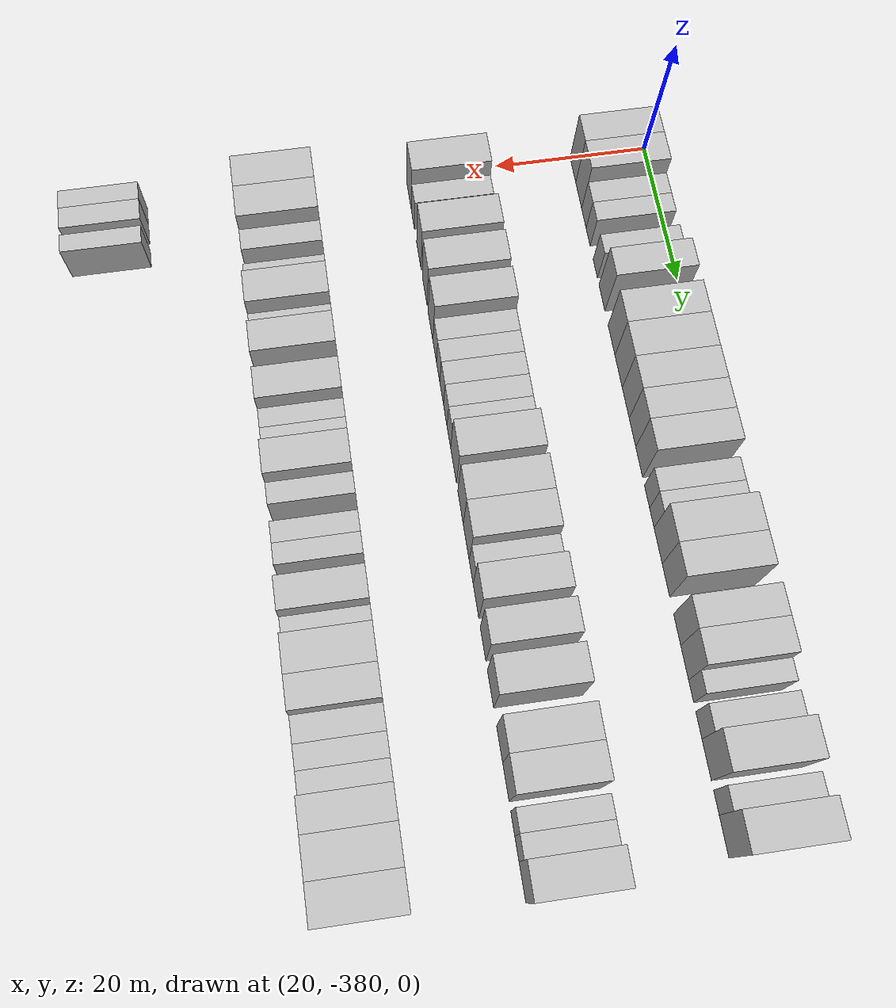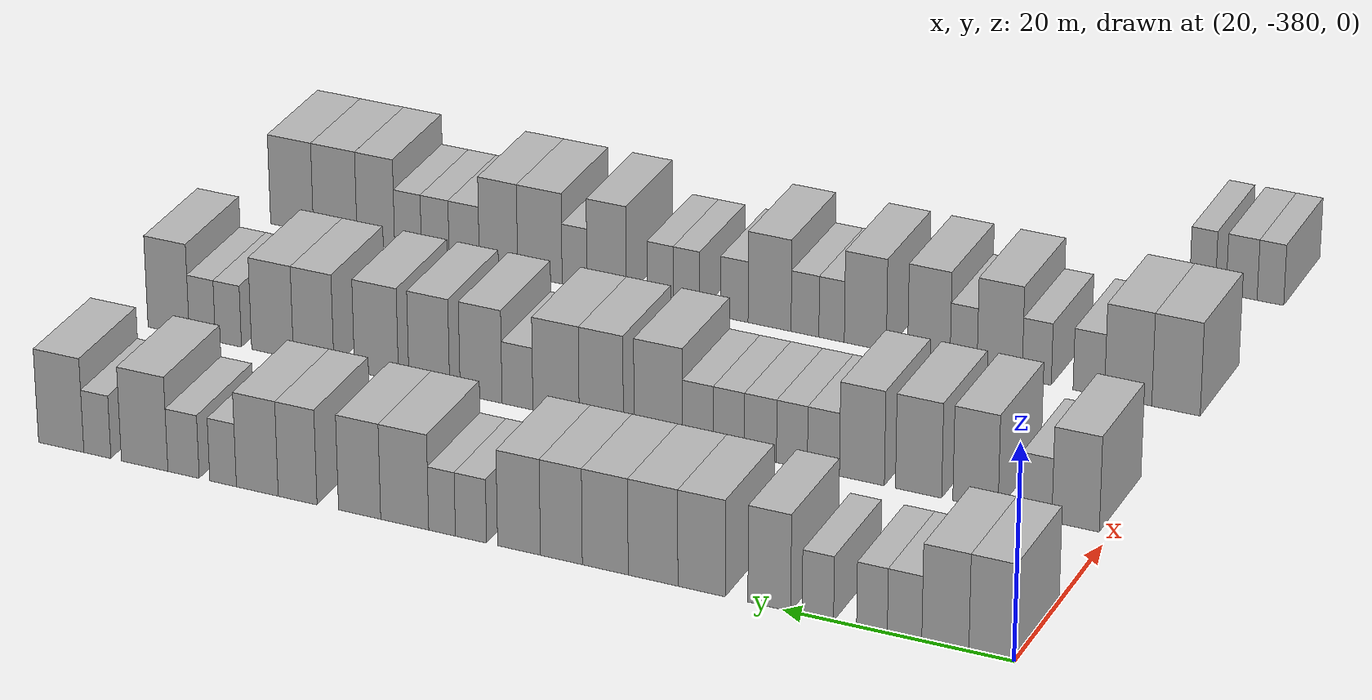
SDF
<sdf version="1.6">
 <world name="default">
  <model name="building_1">
   <static>1</static>
   <pose>25.0000 -378.0509 0 0.000000 0.000000 0.000000</pose>
   <link name="link">
    <pose>0 0 4.50 0 0 0</pose>
    <collision name="collision"><geometry><box><size>10.0000 3.8982 9.0000</size></box></geometry></collision>
    <visual name="visual">
     <cast_shadows>0</cast_shadows>
     <geometry><box><size>10.0000 3.8982 9.0000</size></box></geometry>
     <material>
      <script>
       <uri>model://HANNAS_wall/materials/scripts</uri>
       <uri>model://HANNAS_wall/materials/textures</uri>
       <name>vrc/HANNAS_wall</name>
      </script>
     </material>
    </visual>
   </link>
  </model>
  <model name="building_2">
   <static>1</static>
   <pose>25.0000 -374.0797 0 0.000000 0.000000 0.000000</pose>
   <link name="link">
    <pose>0 0 4.50 0 0 0</pose>
    <collision name="collision"><geometry><box><size>10.0000 4.0440 9.0000</size></box></geometry></collision>
    <visual name="visual">
     <cast_shadows>0</cast_shadows>
     <geometry><box><size>10.0000 4.0440 9.0000</size></box></geometry>
     <material>
      <script>
       <uri>model://HANNAS_wall/materials/scripts</uri>
       <uri>model://HANNAS_wall/materials/textures</uri>
       <name>vrc/HANNAS_wall</name>
      </script>
     </material>
    </visual>
   </link>
  </model>
  <model name="building_3">
   <static>1</static>
   <pose>25.0000 -370.5711 0 0.000000 0.000000 0.000000</pose>
   <link name="link">
    <pose>0 0 3.00 0 0 0</pose>
    <collision name="collision"><geometry><box><size>10.0000 2.9733 6.0000</size></box></geometry></collision>
    <visual name="visual">
     <cast_shadows>0</cast_shadows>
     <geometry><box><size>10.0000 2.9733 6.0000</size></box></geometry>
     <material>
      <script>
       <uri>model://HANNAS_wall/materials/scripts</uri>
       <uri>model://HANNAS_wall/materials/textures</uri>
       <name>vrc/HANNAS_wall</name>
      </script>
     </material>
    </visual>
   </link>
  </model>
  <model name="building_4">
   <static>1</static>
   <pose>25.0000 -367.7521 0 0.000000 0.000000 0.000000</pose>
   <link name="link">
    <pose>0 0 3.00 0 0 0</pose>
    <collision name="collision"><geometry><box><size>10.0000 2.6647 6.0000</size></box></geometry></collision>
    <visual name="visual">
     <cast_shadows>0</cast_shadows>
     <geometry><box><size>10.0000 2.6647 6.0000</size></box></geometry>
     <material>
      <script>
       <uri>model://HANNAS_wall/materials/scripts</uri>
       <uri>model://HANNAS_wall/materials/textures</uri>
       <name>vrc/HANNAS_wall</name>
      </script>
     </material>
    </visual>
   </link>
  </model>
  <model name="building_5">
   <static>1</static>
   <pose>25.0000 -363.0507 0 0.000000 0.000000 0.000000</pose>
   <link name="link">
    <pose>0 0 3.00 0 0 0</pose>
    <collision name="collision"><geometry><box><size>10.0000 2.7381 6.0000</size></box></geometry></collision>
    <visual name="visual">
     <cast_shadows>0</cast_shadows>
     <geometry><box><size>10.0000 2.7381 6.0000</size></box></geometry>
     <material>
      <script>
       <uri>model://HANNAS_wall/materials/scripts</uri>
       <uri>model://HANNAS_wall/materials/textures</uri>
       <name>vrc/HANNAS_wall</name>
      </script>
     </material>
    </visual>
   </link>
  </model>
  <model name="building_6">
   <static>1</static>
   <pose>25.0000 -358.7996 0 0.000000 0.000000 0.000000</pose>
   <link name="link">
    <pose>0 0 4.50 0 0 0</pose>
    <collision name="collision"><geometry><box><size>10.0000 3.7640 9.0000</size></box></geometry></collision>
    <visual name="visual">
     <cast_shadows>0</cast_shadows>
     <geometry><box><size>10.0000 3.7640 9.0000</size></box></geometry>
     <material>
      <script>
       <uri>model://HANNAS_wall/materials/scripts</uri>
       <uri>model://HANNAS_wall/materials/textures</uri>
       <name>vrc/HANNAS_wall</name>
      </script>
     </material>
    </visual>
   </link>
  </model>
  <model name="building_7">
   <static>1</static>
   <pose>25.0000 -352.8179 0 0.000000 0.000000 0.000000</pose>
   <link name="link">
    <pose>0 0 4.50 0 0 0</pose>
    <collision name="collision"><geometry><box><size>10.0000 4.1994 9.0000</size></box></geometry></collision>
    <visual name="visual">
     <cast_shadows>0</cast_shadows>
     <geometry><box><size>10.0000 4.1994 9.0000</size></box></geometry>
     <material>
      <script>
       <uri>model://HANNAS_wall/materials/scripts</uri>
       <uri>model://HANNAS_wall/materials/textures</uri>
       <name>vrc/HANNAS_wall</name>
      </script>
     </material>
    </visual>
   </link>
  </model>
  <model name="building_8">
   <static>1</static>
   <pose>25.0000 -348.5039 0 0.000000 0.000000 0.000000</pose>
   <link name="link">
    <pose>0 0 4.50 0 0 0</pose>
    <collision name="collision"><geometry><box><size>10.0000 4.4284 9.0000</size></box></geometry></collision>
    <visual name="visual">
     <cast_shadows>0</cast_shadows>
     <geometry><box><size>10.0000 4.4284 9.0000</size></box></geometry>
     <material>
      <script>
       <uri>model://HANNAS_wall/materials/scripts</uri>
       <uri>model://HANNAS_wall/materials/textures</uri>
       <name>vrc/HANNAS_wall</name>
      </script>
     </material>
    </visual>
   </link>
  </model>
  <model name="building_9">
   <static>1</static>
   <pose>25.0000 -344.2321 0 0.000000 0.000000 0.000000</pose>
   <link name="link">
    <pose>0 0 4.50 0 0 0</pose>
    <collision name="collision"><geometry><box><size>10.0000 4.1153 9.0000</size></box></geometry></collision>
    <visual name="visual">
     <cast_shadows>0</cast_shadows>
     <geometry><box><size>10.0000 4.1153 9.0000</size></box></geometry>
     <material>
      <script>
       <uri>model://HANNAS_wall/materials/scripts</uri>
       <uri>model://HANNAS_wall/materials/textures</uri>
       <name>vrc/HANNAS_wall</name>
      </script>
     </material>
    </visual>
   </link>
  </model>
  <model name="building_10">
   <static>1</static>
   <pose>25.0000 -340.2857 0 0.000000 0.000000 0.000000</pose>
   <link name="link">
    <pose>0 0 4.50 0 0 0</pose>
    <collision name="collision"><geometry><box><size>10.0000 3.7775 9.0000</size></box></geometry></collision>
    <visual name="visual">
     <cast_shadows>0</cast_shadows>
     <geometry><box><size>10.0000 3.7775 9.0000</size></box></geometry>
     <material>
      <script>
       <uri>model://HANNAS_wall/materials/scripts</uri>
       <uri>model://HANNAS_wall/materials/textures</uri>
       <name>vrc/HANNAS_wall</name>
      </script>
     </material>
    </visual>
   </link>
  </model>
  <model name="building_11">
   <static>1</static>
   <pose>25.0000 -336.4537 0 0.000000 0.000000 0.000000</pose>
   <link name="link">
    <pose>0 0 4.50 0 0 0</pose>
    <collision name="collision"><geometry><box><size>10.0000 3.8866 9.0000</size></box></geometry></collision>
    <visual name="visual">
     <cast_shadows>0</cast_shadows>
     <geometry><box><size>10.0000 3.8866 9.0000</size></box></geometry>
     <material>
      <script>
       <uri>model://HANNAS_wall/materials/scripts</uri>
       <uri>model://HANNAS_wall/materials/textures</uri>
       <name>vrc/HANNAS_wall</name>
      </script>
     </material>
    </visual>
   </link>
  </model>
  <model name="building_12">
   <static>1</static>
   <pose>25.0000 -332.0855 0 0.000000 0.000000 0.000000</pose>
   <link name="link">
    <pose>0 0 3.00 0 0 0</pose>
    <collision name="collision"><geometry><box><size>10.0000 2.8497 6.0000</size></box></geometry></collision>
    <visual name="visual">
     <cast_shadows>0</cast_shadows>
     <geometry><box><size>10.0000 2.8497 6.0000</size></box></geometry>
     <material>
      <script>
       <uri>model://HANNAS_wall/materials/scripts</uri>
       <uri>model://HANNAS_wall/materials/textures</uri>
       <name>vrc/HANNAS_wall</name>
      </script>
     </material>
    </visual>
   </link>
  </model>
  <model name="building_13">
   <static>1</static>
   <pose>25.0000 -329.4376 0 0.000000 0.000000 0.000000</pose>
   <link name="link">
    <pose>0 0 3.00 0 0 0</pose>
    <collision name="collision"><geometry><box><size>10.0000 2.4461 6.0000</size></box></geometry></collision>
    <visual name="visual">
     <cast_shadows>0</cast_shadows>
     <geometry><box><size>10.0000 2.4461 6.0000</size></box></geometry>
     <material>
      <script>
       <uri>model://HANNAS_wall/materials/scripts</uri>
       <uri>model://HANNAS_wall/materials/textures</uri>
       <name>vrc/HANNAS_wall</name>
      </script>
     </material>
    </visual>
   </link>
  </model>
  <model name="building_14">
   <static>1</static>
   <pose>25.0000 -326.0025 0 0.000000 0.000000 0.000000</pose>
   <link name="link">
    <pose>0 0 4.50 0 0 0</pose>
    <collision name="collision"><geometry><box><size>10.0000 4.4242 9.0000</size></box></geometry></collision>
    <visual name="visual">
     <cast_shadows>0</cast_shadows>
     <geometry><box><size>10.0000 4.4242 9.0000</size></box></geometry>
     <material>
      <script>
       <uri>model://HANNAS_wall/materials/scripts</uri>
       <uri>model://HANNAS_wall/materials/textures</uri>
       <name>vrc/HANNAS_wall</name>
      </script>
     </material>
    </visual>
   </link>
  </model>
  <model name="building_15">
   <static>1</static>
   <pose>25.0000 -321.8357 0 0.000000 0.000000 0.000000</pose>
   <link name="link">
    <pose>0 0 4.50 0 0 0</pose>
    <collision name="collision"><geometry><box><size>10.0000 3.9092 9.0000</size></box></geometry></collision>
    <visual name="visual">
     <cast_shadows>0</cast_shadows>
     <geometry><box><size>10.0000 3.9092 9.0000</size></box></geometry>
     <material>
      <script>
       <uri>model://HANNAS_wall/materials/scripts</uri>
       <uri>model://HANNAS_wall/materials/textures</uri>
       <name>vrc/HANNAS_wall</name>
      </script>
     </material>
    </visual>
   </link>
  </model>
  <model name="building_16">
   <static>1</static>
   <pose>25.0000 -316.0678 0 0.000000 0.000000 0.000000</pose>
   <link name="link">
    <pose>0 0 4.50 0 0 0</pose>
    <collision name="collision"><geometry><box><size>10.0000 3.6266 9.0000</size></box></geometry></collision>
    <visual name="visual">
     <cast_shadows>0</cast_shadows>
     <geometry><box><size>10.0000 3.6266 9.0000</size></box></geometry>
     <material>
      <script>
       <uri>model://HANNAS_wall/materials/scripts</uri>
       <uri>model://HANNAS_wall/materials/textures</uri>
       <name>vrc/HANNAS_wall</name>
      </script>
     </material>
    </visual>
   </link>
  </model>
  <model name="building_17">
   <static>1</static>
   <pose>25.0000 -312.2906 0 0.000000 0.000000 0.000000</pose>
   <link name="link">
    <pose>0 0 4.50 0 0 0</pose>
    <collision name="collision"><geometry><box><size>10.0000 3.9279 9.0000</size></box></geometry></collision>
    <visual name="visual">
     <cast_shadows>0</cast_shadows>
     <geometry><box><size>10.0000 3.9279 9.0000</size></box></geometry>
     <material>
      <script>
       <uri>model://HANNAS_wall/materials/scripts</uri>
       <uri>model://HANNAS_wall/materials/textures</uri>
       <name>vrc/HANNAS_wall</name>
      </script>
     </material>
    </visual>
   </link>
  </model>
  <model name="building_18">
   <static>1</static>
   <pose>25.0000 -309.0720 0 0.000000 0.000000 0.000000</pose>
   <link name="link">
    <pose>0 0 3.00 0 0 0</pose>
    <collision name="collision"><geometry><box><size>10.0000 2.5093 6.0000</size></box></geometry></collision>
    <visual name="visual">
     <cast_shadows>0</cast_shadows>
     <geometry><box><size>10.0000 2.5093 6.0000</size></box></geometry>
     <material>
      <script>
       <uri>model://HANNAS_wall/materials/scripts</uri>
       <uri>model://HANNAS_wall/materials/textures</uri>
       <name>vrc/HANNAS_wall</name>
      </script>
     </material>
    </visual>
   </link>
  </model>
  <model name="building_19">
   <static>1</static>
   <pose>25.0000 -305.3311 0 0.000000 0.000000 0.000000</pose>
   <link name="link">
    <pose>0 0 3.00 0 0 0</pose>
    <collision name="collision"><geometry><box><size>10.0000 2.9726 6.0000</size></box></geometry></collision>
    <visual name="visual">
     <cast_shadows>0</cast_shadows>
     <geometry><box><size>10.0000 2.9726 6.0000</size></box></geometry>
     <material>
      <script>
       <uri>model://HANNAS_wall/materials/scripts</uri>
       <uri>model://HANNAS_wall/materials/textures</uri>
       <name>vrc/HANNAS_wall</name>
      </script>
     </material>
    </visual>
   </link>
  </model>
  <model name="building_20">
   <static>1</static>
   <pose>25.0000 -301.6271 0 0.000000 0.000000 0.000000</pose>
   <link name="link">
    <pose>0 0 4.50 0 0 0</pose>
    <collision name="collision"><geometry><box><size>10.0000 4.4356 9.0000</size></box></geometry></collision>
    <visual name="visual">
     <cast_shadows>0</cast_shadows>
     <geometry><box><size>10.0000 4.4356 9.0000</size></box></geometry>
     <material>
      <script>
       <uri>model://HANNAS_wall/materials/scripts</uri>
       <uri>model://HANNAS_wall/materials/textures</uri>
       <name>vrc/HANNAS_wall</name>
      </script>
     </material>
    </visual>
   </link>
  </model>
  <model name="building_21">
   <static>1</static>
   <pose>25.0000 -297.1116 0 0.000000 0.000000 0.000000</pose>
   <link name="link">
    <pose>0 0 3.00 0 0 0</pose>
    <collision name="collision"><geometry><box><size>10.0000 2.5954 6.0000</size></box></geometry></collision>
    <visual name="visual">
     <cast_shadows>0</cast_shadows>
     <geometry><box><size>10.0000 2.5954 6.0000</size></box></geometry>
     <material>
      <script>
       <uri>model://HANNAS_wall/materials/scripts</uri>
       <uri>model://HANNAS_wall/materials/textures</uri>
       <name>vrc/HANNAS_wall</name>
      </script>
     </material>
    </visual>
   </link>
  </model>
  <model name="building_22">
   <static>1</static>
   <pose>25.0000 -293.6327 0 0.000000 0.000000 0.000000</pose>
   <link name="link">
    <pose>0 0 4.50 0 0 0</pose>
    <collision name="collision"><geometry><box><size>10.0000 4.3623 9.0000</size></box></geometry></collision>
    <visual name="visual">
     <cast_shadows>0</cast_shadows>
     <geometry><box><size>10.0000 4.3623 9.0000</size></box></geometry>
     <material>
      <script>
       <uri>model://HANNAS_wall/materials/scripts</uri>
       <uri>model://HANNAS_wall/materials/textures</uri>
       <name>vrc/HANNAS_wall</name>
      </script>
     </material>
    </visual>
   </link>
  </model>
  <model name="building_185">
   <static>1</static>
   <pose>47.0000 -376.9051 0 0.000000 0.000000 0.000000</pose>
   <link name="link">
    <pose>0 0 4.50 0 0 0</pose>
    <collision name="collision"><geometry><box><size>10.0000 4.1899 9.0000</size></box></geometry></collision>
    <visual name="visual">
     <cast_shadows>0</cast_shadows>
     <geometry><box><size>10.0000 4.1899 9.0000</size></box></geometry>
     <material>
      <script>
       <uri>model://HANNAS_wall/materials/scripts</uri>
       <uri>model://HANNAS_wall/materials/textures</uri>
       <name>vrc/HANNAS_wall</name>
      </script>
     </material>
    </visual>
   </link>
  </model>
  <model name="building_186">
   <static>1</static>
   <pose>47.0000 -373.4280 0 0.000000 0.000000 0.000000</pose>
   <link name="link">
    <pose>0 0 3.00 0 0 0</pose>
    <collision name="collision"><geometry><box><size>10.0000 2.7643 6.0000</size></box></geometry></collision>
    <visual name="visual">
     <cast_shadows>0</cast_shadows>
     <geometry><box><size>10.0000 2.7643 6.0000</size></box></geometry>
     <material>
      <script>
       <uri>model://HANNAS_wall/materials/scripts</uri>
       <uri>model://HANNAS_wall/materials/textures</uri>
       <name>vrc/HANNAS_wall</name>
      </script>
     </material>
    </visual>
   </link>
  </model>
  <model name="building_187">
   <static>1</static>
   <pose>47.0000 -368.0248 0 0.000000 0.000000 0.000000</pose>
   <link name="link">
    <pose>0 0 4.50 0 0 0</pose>
    <collision name="collision"><geometry><box><size>10.0000 4.0422 9.0000</size></box></geometry></collision>
    <visual name="visual">
     <cast_shadows>0</cast_shadows>
     <geometry><box><size>10.0000 4.0422 9.0000</size></box></geometry>
     <material>
      <script>
       <uri>model://HANNAS_wall/materials/scripts</uri>
       <uri>model://HANNAS_wall/materials/textures</uri>
       <name>vrc/HANNAS_wall</name>
      </script>
     </material>
    </visual>
   </link>
  </model>
  <model name="building_188">
   <static>1</static>
   <pose>47.0000 -362.9261 0 0.000000 0.000000 0.000000</pose>
   <link name="link">
    <pose>0 0 4.50 0 0 0</pose>
    <collision name="collision"><geometry><box><size>10.0000 4.1551 9.0000</size></box></geometry></collision>
    <visual name="visual">
     <cast_shadows>0</cast_shadows>
     <geometry><box><size>10.0000 4.1551 9.0000</size></box></geometry>
     <material>
      <script>
       <uri>model://HANNAS_wall/materials/scripts</uri>
       <uri>model://HANNAS_wall/materials/textures</uri>
       <name>vrc/HANNAS_wall</name>
      </script>
     </material>
    </visual>
   </link>
  </model>
  <model name="building_189">
   <static>1</static>
   <pose>47.0000 -357.8158 0 0.000000 0.000000 0.000000</pose>
   <link name="link">
    <pose>0 0 4.50 0 0 0</pose>
    <collision name="collision"><geometry><box><size>10.0000 4.0656 9.0000</size></box></geometry></collision>
    <visual name="visual">
     <cast_shadows>0</cast_shadows>
     <geometry><box><size>10.0000 4.0656 9.0000</size></box></geometry>
     <material>
      <script>
       <uri>model://HANNAS_wall/materials/scripts</uri>
       <uri>model://HANNAS_wall/materials/textures</uri>
       <name>vrc/HANNAS_wall</name>
      </script>
     </material>
    </visual>
   </link>
  </model>
  <model name="building_190">
   <static>1</static>
   <pose>47.0000 -354.3231 0 0.000000 0.000000 0.000000</pose>
   <link name="link">
    <pose>0 0 3.00 0 0 0</pose>
    <collision name="collision"><geometry><box><size>10.0000 2.9198 6.0000</size></box></geometry></collision>
    <visual name="visual">
     <cast_shadows>0</cast_shadows>
     <geometry><box><size>10.0000 2.9198 6.0000</size></box></geometry>
     <material>
      <script>
       <uri>model://HANNAS_wall/materials/scripts</uri>
       <uri>model://HANNAS_wall/materials/textures</uri>
       <name>vrc/HANNAS_wall</name>
      </script>
     </material>
    </visual>
   </link>
  </model>
  <model name="building_191">
   <static>1</static>
   <pose>47.0000 -351.4505 0 0.000000 0.000000 0.000000</pose>
   <link name="link">
    <pose>0 0 3.00 0 0 0</pose>
    <collision name="collision"><geometry><box><size>10.0000 2.8253 6.0000</size></box></geometry></collision>
    <visual name="visual">
     <cast_shadows>0</cast_shadows>
     <geometry><box><size>10.0000 2.8253 6.0000</size></box></geometry>
     <material>
      <script>
       <uri>model://HANNAS_wall/materials/scripts</uri>
       <uri>model://HANNAS_wall/materials/textures</uri>
       <name>vrc/HANNAS_wall</name>
      </script>
     </material>
    </visual>
   </link>
  </model>
  <model name="building_192">
   <static>1</static>
   <pose>47.0000 -348.5610 0 0.000000 0.000000 0.000000</pose>
   <link name="link">
    <pose>0 0 3.00 0 0 0</pose>
    <collision name="collision"><geometry><box><size>10.0000 2.9536 6.0000</size></box></geometry></collision>
    <visual name="visual">
     <cast_shadows>0</cast_shadows>
     <geometry><box><size>10.0000 2.9536 6.0000</size></box></geometry>
     <material>
      <script>
       <uri>model://HANNAS_wall/materials/scripts</uri>
       <uri>model://HANNAS_wall/materials/textures</uri>
       <name>vrc/HANNAS_wall</name>
      </script>
     </material>
    </visual>
   </link>
  </model>
  <model name="building_193">
   <static>1</static>
   <pose>47.0000 -345.6570 0 0.000000 0.000000 0.000000</pose>
   <link name="link">
    <pose>0 0 3.00 0 0 0</pose>
    <collision name="collision"><geometry><box><size>10.0000 2.8545 6.0000</size></box></geometry></collision>
    <visual name="visual">
     <cast_shadows>0</cast_shadows>
     <geometry><box><size>10.0000 2.8545 6.0000</size></box></geometry>
     <material>
      <script>
       <uri>model://HANNAS_wall/materials/scripts</uri>
       <uri>model://HANNAS_wall/materials/textures</uri>
       <name>vrc/HANNAS_wall</name>
      </script>
     </material>
    </visual>
   </link>
  </model>
  <model name="building_194">
   <static>1</static>
   <pose>47.0000 -342.8008 0 0.000000 0.000000 0.000000</pose>
   <link name="link">
    <pose>0 0 3.00 0 0 0</pose>
    <collision name="collision"><geometry><box><size>10.0000 2.8580 6.0000</size></box></geometry></collision>
    <visual name="visual">
     <cast_shadows>0</cast_shadows>
     <geometry><box><size>10.0000 2.8580 6.0000</size></box></geometry>
     <material>
      <script>
       <uri>model://HANNAS_wall/materials/scripts</uri>
       <uri>model://HANNAS_wall/materials/textures</uri>
       <name>vrc/HANNAS_wall</name>
      </script>
     </material>
    </visual>
   </link>
  </model>
  <model name="building_195">
   <static>1</static>
   <pose>47.0000 -339.1261 0 0.000000 0.000000 0.000000</pose>
   <link name="link">
    <pose>0 0 4.50 0 0 0</pose>
    <collision name="collision"><geometry><box><size>10.0000 4.4913 9.0000</size></box></geometry></collision>
    <visual name="visual">
     <cast_shadows>0</cast_shadows>
     <geometry><box><size>10.0000 4.4913 9.0000</size></box></geometry>
     <material>
      <script>
       <uri>model://HANNAS_wall/materials/scripts</uri>
       <uri>model://HANNAS_wall/materials/textures</uri>
       <name>vrc/HANNAS_wall</name>
      </script>
     </material>
    </visual>
   </link>
  </model>
  <model name="building_196">
   <static>1</static>
   <pose>47.0000 -333.8119 0 0.000000 0.000000 0.000000</pose>
   <link name="link">
    <pose>0 0 4.50 0 0 0</pose>
    <collision name="collision"><geometry><box><size>10.0000 4.1371 9.0000</size></box></geometry></collision>
    <visual name="visual">
     <cast_shadows>0</cast_shadows>
     <geometry><box><size>10.0000 4.1371 9.0000</size></box></geometry>
     <material>
      <script>
       <uri>model://HANNAS_wall/materials/scripts</uri>
       <uri>model://HANNAS_wall/materials/textures</uri>
       <name>vrc/HANNAS_wall</name>
      </script>
     </material>
    </visual>
   </link>
  </model>
  <model name="building_197">
   <static>1</static>
   <pose>47.0000 -329.5615 0 0.000000 0.000000 0.000000</pose>
   <link name="link">
    <pose>0 0 4.50 0 0 0</pose>
    <collision name="collision"><geometry><box><size>10.0000 4.3638 9.0000</size></box></geometry></collision>
    <visual name="visual">
     <cast_shadows>0</cast_shadows>
     <geometry><box><size>10.0000 4.3638 9.0000</size></box></geometry>
     <material>
      <script>
       <uri>model://HANNAS_wall/materials/scripts</uri>
       <uri>model://HANNAS_wall/materials/textures</uri>
       <name>vrc/HANNAS_wall</name>
      </script>
     </material>
    </visual>
   </link>
  </model>
  <model name="building_198">
   <static>1</static>
   <pose>47.0000 -325.9212 0 0.000000 0.000000 0.000000</pose>
   <link name="link">
    <pose>0 0 3.00 0 0 0</pose>
    <collision name="collision"><geometry><box><size>10.0000 2.9168 6.0000</size></box></geometry></collision>
    <visual name="visual">
     <cast_shadows>0</cast_shadows>
     <geometry><box><size>10.0000 2.9168 6.0000</size></box></geometry>
     <material>
      <script>
       <uri>model://HANNAS_wall/materials/scripts</uri>
       <uri>model://HANNAS_wall/materials/textures</uri>
       <name>vrc/HANNAS_wall</name>
      </script>
     </material>
    </visual>
   </link>
  </model>
  <model name="building_199">
   <static>1</static>
   <pose>47.0000 -322.4691 0 0.000000 0.000000 0.000000</pose>
   <link name="link">
    <pose>0 0 4.50 0 0 0</pose>
    <collision name="collision"><geometry><box><size>10.0000 3.9874 9.0000</size></box></geometry></collision>
    <visual name="visual">
     <cast_shadows>0</cast_shadows>
     <geometry><box><size>10.0000 3.9874 9.0000</size></box></geometry>
     <material>
      <script>
       <uri>model://HANNAS_wall/materials/scripts</uri>
       <uri>model://HANNAS_wall/materials/textures</uri>
       <name>vrc/HANNAS_wall</name>
      </script>
     </material>
    </visual>
   </link>
  </model>
  <model name="building_200">
   <static>1</static>
   <pose>47.0000 -317.5224 0 0.000000 0.000000 0.000000</pose>
   <link name="link">
    <pose>0 0 4.50 0 0 0</pose>
    <collision name="collision"><geometry><box><size>10.0000 3.9061 9.0000</size></box></geometry></collision>
    <visual name="visual">
     <cast_shadows>0</cast_shadows>
     <geometry><box><size>10.0000 3.9061 9.0000</size></box></geometry>
     <material>
      <script>
       <uri>model://HANNAS_wall/materials/scripts</uri>
       <uri>model://HANNAS_wall/materials/textures</uri>
       <name>vrc/HANNAS_wall</name>
      </script>
     </material>
    </visual>
   </link>
  </model>
  <model name="building_201">
   <static>1</static>
   <pose>47.0000 -312.4459 0 0.000000 0.000000 0.000000</pose>
   <link name="link">
    <pose>0 0 4.50 0 0 0</pose>
    <collision name="collision"><geometry><box><size>10.0000 4.2470 9.0000</size></box></geometry></collision>
    <visual name="visual">
     <cast_shadows>0</cast_shadows>
     <geometry><box><size>10.0000 4.2470 9.0000</size></box></geometry>
     <material>
      <script>
       <uri>model://HANNAS_wall/materials/scripts</uri>
       <uri>model://HANNAS_wall/materials/textures</uri>
       <name>vrc/HANNAS_wall</name>
      </script>
     </material>
    </visual>
   </link>
  </model>
  <model name="building_202">
   <static>1</static>
   <pose>47.0000 -306.3537 0 0.000000 0.000000 0.000000</pose>
   <link name="link">
    <pose>0 0 4.50 0 0 0</pose>
    <collision name="collision"><geometry><box><size>10.0000 3.9373 9.0000</size></box></geometry></collision>
    <visual name="visual">
     <cast_shadows>0</cast_shadows>
     <geometry><box><size>10.0000 3.9373 9.0000</size></box></geometry>
     <material>
      <script>
       <uri>model://HANNAS_wall/materials/scripts</uri>
       <uri>model://HANNAS_wall/materials/textures</uri>
       <name>vrc/HANNAS_wall</name>
      </script>
     </material>
    </visual>
   </link>
  </model>
  <model name="building_203">
   <static>1</static>
   <pose>47.0000 -302.3422 0 0.000000 0.000000 0.000000</pose>
   <link name="link">
    <pose>0 0 4.50 0 0 0</pose>
    <collision name="collision"><geometry><box><size>10.0000 4.0857 9.0000</size></box></geometry></collision>
    <visual name="visual">
     <cast_shadows>0</cast_shadows>
     <geometry><box><size>10.0000 4.0857 9.0000</size></box></geometry>
     <material>
      <script>
       <uri>model://HANNAS_wall/materials/scripts</uri>
       <uri>model://HANNAS_wall/materials/textures</uri>
       <name>vrc/HANNAS_wall</name>
      </script>
     </material>
    </visual>
   </link>
  </model>
  <model name="building_204">
   <static>1</static>
   <pose>47.0000 -298.0194 0 0.000000 0.000000 0.000000</pose>
   <link name="link">
    <pose>0 0 3.00 0 0 0</pose>
    <collision name="collision"><geometry><box><size>10.0000 2.5598 6.0000</size></box></geometry></collision>
    <visual name="visual">
     <cast_shadows>0</cast_shadows>
     <geometry><box><size>10.0000 2.5598 6.0000</size></box></geometry>
     <material>
      <script>
       <uri>model://HANNAS_wall/materials/scripts</uri>
       <uri>model://HANNAS_wall/materials/textures</uri>
       <name>vrc/HANNAS_wall</name>
      </script>
     </material>
    </visual>
   </link>
  </model>
  <model name="building_205">
   <static>1</static>
   <pose>47.0000 -295.4513 0 0.000000 0.000000 0.000000</pose>
   <link name="link">
    <pose>0 0 3.00 0 0 0</pose>
    <collision name="collision"><geometry><box><size>10.0000 2.5765 6.0000</size></box></geometry></collision>
    <visual name="visual">
     <cast_shadows>0</cast_shadows>
     <geometry><box><size>10.0000 2.5765 6.0000</size></box></geometry>
     <material>
      <script>
       <uri>model://HANNAS_wall/materials/scripts</uri>
       <uri>model://HANNAS_wall/materials/textures</uri>
       <name>vrc/HANNAS_wall</name>
      </script>
     </material>
    </visual>
   </link>
  </model>
  <model name="building_206">
   <static>1</static>
   <pose>47.0000 -292.1161 0 0.000000 0.000000 0.000000</pose>
   <link name="link">
    <pose>0 0 4.50 0 0 0</pose>
    <collision name="collision"><geometry><box><size>10.0000 4.0939 9.0000</size></box></geometry></collision>
    <visual name="visual">
     <cast_shadows>0</cast_shadows>
     <geometry><box><size>10.0000 4.0939 9.0000</size></box></geometry>
     <material>
      <script>
       <uri>model://HANNAS_wall/materials/scripts</uri>
       <uri>model://HANNAS_wall/materials/textures</uri>
       <name>vrc/HANNAS_wall</name>
      </script>
     </material>
    </visual>
   </link>
  </model>
  <model name="building_373">
   <static>1</static>
   <pose>69.0000 -377.8008 0 0.000000 0.000000 0.000000</pose>
   <link name="link">
    <pose>0 0 4.50 0 0 0</pose>
    <collision name="collision"><geometry><box><size>10.0000 4.3983 9.0000</size></box></geometry></collision>
    <visual name="visual">
     <cast_shadows>0</cast_shadows>
     <geometry><box><size>10.0000 4.3983 9.0000</size></box></geometry>
     <material>
      <script>
       <uri>model://HANNAS_wall/materials/scripts</uri>
       <uri>model://HANNAS_wall/materials/textures</uri>
       <name>vrc/HANNAS_wall</name>
      </script>
     </material>
    </visual>
   </link>
  </model>
  <model name="building_374">
   <static>1</static>
   <pose>69.0000 -373.4444 0 0.000000 0.000000 0.000000</pose>
   <link name="link">
    <pose>0 0 4.50 0 0 0</pose>
    <collision name="collision"><geometry><box><size>10.0000 4.3145 9.0000</size></box></geometry></collision>
    <visual name="visual">
     <cast_shadows>0</cast_shadows>
     <geometry><box><size>10.0000 4.3145 9.0000</size></box></geometry>
     <material>
      <script>
       <uri>model://HANNAS_wall/materials/scripts</uri>
       <uri>model://HANNAS_wall/materials/textures</uri>
       <name>vrc/HANNAS_wall</name>
      </script>
     </material>
    </visual>
   </link>
  </model>
  <model name="building_375">
   <static>1</static>
   <pose>69.0000 -369.8487 0 0.000000 0.000000 0.000000</pose>
   <link name="link">
    <pose>0 0 3.00 0 0 0</pose>
    <collision name="collision"><geometry><box><size>10.0000 2.8770 6.0000</size></box></geometry></collision>
    <visual name="visual">
     <cast_shadows>0</cast_shadows>
     <geometry><box><size>10.0000 2.8770 6.0000</size></box></geometry>
     <material>
      <script>
       <uri>model://HANNAS_wall/materials/scripts</uri>
       <uri>model://HANNAS_wall/materials/textures</uri>
       <name>vrc/HANNAS_wall</name>
      </script>
     </material>
    </visual>
   </link>
  </model>
  <model name="building_376">
   <static>1</static>
   <pose>69.0000 -365.0605 0 0.000000 0.000000 0.000000</pose>
   <link name="link">
    <pose>0 0 3.00 0 0 0</pose>
    <collision name="collision"><geometry><box><size>10.0000 2.6994 6.0000</size></box></geometry></collision>
    <visual name="visual">
     <cast_shadows>0</cast_shadows>
     <geometry><box><size>10.0000 2.6994 6.0000</size></box></geometry>
     <material>
      <script>
       <uri>model://HANNAS_wall/materials/scripts</uri>
       <uri>model://HANNAS_wall/materials/textures</uri>
       <name>vrc/HANNAS_wall</name>
      </script>
     </material>
    </visual>
   </link>
  </model>
  <model name="building_377">
   <static>1</static>
   <pose>69.0000 -361.6196 0 0.000000 0.000000 0.000000</pose>
   <link name="link">
    <pose>0 0 4.50 0 0 0</pose>
    <collision name="collision"><geometry><box><size>10.0000 4.1824 9.0000</size></box></geometry></collision>
    <visual name="visual">
     <cast_shadows>0</cast_shadows>
     <geometry><box><size>10.0000 4.1824 9.0000</size></box></geometry>
     <material>
      <script>
       <uri>model://HANNAS_wall/materials/scripts</uri>
       <uri>model://HANNAS_wall/materials/textures</uri>
       <name>vrc/HANNAS_wall</name>
      </script>
     </material>
    </visual>
   </link>
  </model>
  <model name="building_378">
   <static>1</static>
   <pose>69.0000 -358.2750 0 0.000000 0.000000 0.000000</pose>
   <link name="link">
    <pose>0 0 3.00 0 0 0</pose>
    <collision name="collision"><geometry><box><size>10.0000 2.5068 6.0000</size></box></geometry></collision>
    <visual name="visual">
     <cast_shadows>0</cast_shadows>
     <geometry><box><size>10.0000 2.5068 6.0000</size></box></geometry>
     <material>
      <script>
       <uri>model://HANNAS_wall/materials/scripts</uri>
       <uri>model://HANNAS_wall/materials/textures</uri>
       <name>vrc/HANNAS_wall</name>
      </script>
     </material>
    </visual>
   </link>
  </model>
  <model name="building_379">
   <static>1</static>
   <pose>69.0000 -355.0372 0 0.000000 0.000000 0.000000</pose>
   <link name="link">
    <pose>0 0 4.50 0 0 0</pose>
    <collision name="collision"><geometry><box><size>10.0000 3.9687 9.0000</size></box></geometry></collision>
    <visual name="visual">
     <cast_shadows>0</cast_shadows>
     <geometry><box><size>10.0000 3.9687 9.0000</size></box></geometry>
     <material>
      <script>
       <uri>model://HANNAS_wall/materials/scripts</uri>
       <uri>model://HANNAS_wall/materials/textures</uri>
       <name>vrc/HANNAS_wall</name>
      </script>
     </material>
    </visual>
   </link>
  </model>
  <model name="building_380">
   <static>1</static>
   <pose>69.0000 -349.0732 0 0.000000 0.000000 0.000000</pose>
   <link name="link">
    <pose>0 0 4.50 0 0 0</pose>
    <collision name="collision"><geometry><box><size>10.0000 3.9593 9.0000</size></box></geometry></collision>
    <visual name="visual">
     <cast_shadows>0</cast_shadows>
     <geometry><box><size>10.0000 3.9593 9.0000</size></box></geometry>
     <material>
      <script>
       <uri>model://HANNAS_wall/materials/scripts</uri>
       <uri>model://HANNAS_wall/materials/textures</uri>
       <name>vrc/HANNAS_wall</name>
      </script>
     </material>
    </visual>
   </link>
  </model>
  <model name="building_381">
   <static>1</static>
   <pose>69.0000 -345.8891 0 0.000000 0.000000 0.000000</pose>
   <link name="link">
    <pose>0 0 3.00 0 0 0</pose>
    <collision name="collision"><geometry><box><size>10.0000 2.4089 6.0000</size></box></geometry></collision>
    <visual name="visual">
     <cast_shadows>0</cast_shadows>
     <geometry><box><size>10.0000 2.4089 6.0000</size></box></geometry>
     <material>
      <script>
       <uri>model://HANNAS_wall/materials/scripts</uri>
       <uri>model://HANNAS_wall/materials/textures</uri>
       <name>vrc/HANNAS_wall</name>
      </script>
     </material>
    </visual>
   </link>
  </model>
  <model name="building_382">
   <static>1</static>
   <pose>69.0000 -343.3648 0 0.000000 0.000000 0.000000</pose>
   <link name="link">
    <pose>0 0 3.00 0 0 0</pose>
    <collision name="collision"><geometry><box><size>10.0000 2.6398 6.0000</size></box></geometry></collision>
    <visual name="visual">
     <cast_shadows>0</cast_shadows>
     <geometry><box><size>10.0000 2.6398 6.0000</size></box></geometry>
     <material>
      <script>
       <uri>model://HANNAS_wall/materials/scripts</uri>
       <uri>model://HANNAS_wall/materials/textures</uri>
       <name>vrc/HANNAS_wall</name>
      </script>
     </material>
    </visual>
   </link>
  </model>
  <model name="building_383">
   <static>1</static>
   <pose>69.0000 -339.9889 0 0.000000 0.000000 0.000000</pose>
   <link name="link">
    <pose>0 0 4.50 0 0 0</pose>
    <collision name="collision"><geometry><box><size>10.0000 4.1120 9.0000</size></box></geometry></collision>
    <visual name="visual">
     <cast_shadows>0</cast_shadows>
     <geometry><box><size>10.0000 4.1120 9.0000</size></box></geometry>
     <material>
      <script>
       <uri>model://HANNAS_wall/materials/scripts</uri>
       <uri>model://HANNAS_wall/materials/textures</uri>
       <name>vrc/HANNAS_wall</name>
      </script>
     </material>
    </visual>
   </link>
  </model>
  <model name="building_384">
   <static>1</static>
   <pose>69.0000 -336.6136 0 0.000000 0.000000 0.000000</pose>
   <link name="link">
    <pose>0 0 3.00 0 0 0</pose>
    <collision name="collision"><geometry><box><size>10.0000 2.6386 6.0000</size></box></geometry></collision>
    <visual name="visual">
     <cast_shadows>0</cast_shadows>
     <geometry><box><size>10.0000 2.6386 6.0000</size></box></geometry>
     <material>
      <script>
       <uri>model://HANNAS_wall/materials/scripts</uri>
       <uri>model://HANNAS_wall/materials/textures</uri>
       <name>vrc/HANNAS_wall</name>
      </script>
     </material>
    </visual>
   </link>
  </model>
  <model name="building_385">
   <static>1</static>
   <pose>69.0000 -332.0187 0 0.000000 0.000000 0.000000</pose>
   <link name="link">
    <pose>0 0 3.00 0 0 0</pose>
    <collision name="collision"><geometry><box><size>10.0000 2.5512 6.0000</size></box></geometry></collision>
    <visual name="visual">
     <cast_shadows>0</cast_shadows>
     <geometry><box><size>10.0000 2.5512 6.0000</size></box></geometry>
     <material>
      <script>
       <uri>model://HANNAS_wall/materials/scripts</uri>
       <uri>model://HANNAS_wall/materials/textures</uri>
       <name>vrc/HANNAS_wall</name>
      </script>
     </material>
    </visual>
   </link>
  </model>
  <model name="building_386">
   <static>1</static>
   <pose>69.0000 -329.4730 0 0.000000 0.000000 0.000000</pose>
   <link name="link">
    <pose>0 0 3.00 0 0 0</pose>
    <collision name="collision"><geometry><box><size>10.0000 2.5402 6.0000</size></box></geometry></collision>
    <visual name="visual">
     <cast_shadows>0</cast_shadows>
     <geometry><box><size>10.0000 2.5402 6.0000</size></box></geometry>
     <material>
      <script>
       <uri>model://HANNAS_wall/materials/scripts</uri>
       <uri>model://HANNAS_wall/materials/textures</uri>
       <name>vrc/HANNAS_wall</name>
      </script>
     </material>
    </visual>
   </link>
  </model>
  <model name="building_387">
   <static>1</static>
   <pose>69.0000 -324.2780 0 0.000000 0.000000 0.000000</pose>
   <link name="link">
    <pose>0 0 4.50 0 0 0</pose>
    <collision name="collision"><geometry><box><size>10.0000 3.8497 9.0000</size></box></geometry></collision>
    <visual name="visual">
     <cast_shadows>0</cast_shadows>
     <geometry><box><size>10.0000 3.8497 9.0000</size></box></geometry>
     <material>
      <script>
       <uri>model://HANNAS_wall/materials/scripts</uri>
       <uri>model://HANNAS_wall/materials/textures</uri>
       <name>vrc/HANNAS_wall</name>
      </script>
     </material>
    </visual>
   </link>
  </model>
  <model name="building_388">
   <static>1</static>
   <pose>69.0000 -321.1357 0 0.000000 0.000000 0.000000</pose>
   <link name="link">
    <pose>0 0 3.00 0 0 0</pose>
    <collision name="collision"><geometry><box><size>10.0000 2.4349 6.0000</size></box></geometry></collision>
    <visual name="visual">
     <cast_shadows>0</cast_shadows>
     <geometry><box><size>10.0000 2.4349 6.0000</size></box></geometry>
     <material>
      <script>
       <uri>model://HANNAS_wall/materials/scripts</uri>
       <uri>model://HANNAS_wall/materials/textures</uri>
       <name>vrc/HANNAS_wall</name>
      </script>
     </material>
    </visual>
   </link>
  </model>
  <model name="building_389">
   <static>1</static>
   <pose>69.0000 -317.7344 0 0.000000 0.000000 0.000000</pose>
   <link name="link">
    <pose>0 0 4.50 0 0 0</pose>
    <collision name="collision"><geometry><box><size>10.0000 4.3678 9.0000</size></box></geometry></collision>
    <visual name="visual">
     <cast_shadows>0</cast_shadows>
     <geometry><box><size>10.0000 4.3678 9.0000</size></box></geometry>
     <material>
      <script>
       <uri>model://HANNAS_wall/materials/scripts</uri>
       <uri>model://HANNAS_wall/materials/textures</uri>
       <name>vrc/HANNAS_wall</name>
      </script>
     </material>
    </visual>
   </link>
  </model>
  <model name="building_390">
   <static>1</static>
   <pose>69.0000 -313.6528 0 0.000000 0.000000 0.000000</pose>
   <link name="link">
    <pose>0 0 4.50 0 0 0</pose>
    <collision name="collision"><geometry><box><size>10.0000 3.7955 9.0000</size></box></geometry></collision>
    <visual name="visual">
     <cast_shadows>0</cast_shadows>
     <geometry><box><size>10.0000 3.7955 9.0000</size></box></geometry>
     <material>
      <script>
       <uri>model://HANNAS_wall/materials/scripts</uri>
       <uri>model://HANNAS_wall/materials/textures</uri>
       <name>vrc/HANNAS_wall</name>
      </script>
     </material>
    </visual>
   </link>
  </model>
  <model name="building_391">
   <static>1</static>
   <pose>69.0000 -310.2556 0 0.000000 0.000000 0.000000</pose>
   <link name="link">
    <pose>0 0 3.00 0 0 0</pose>
    <collision name="collision"><geometry><box><size>10.0000 2.9988 6.0000</size></box></geometry></collision>
    <visual name="visual">
     <cast_shadows>0</cast_shadows>
     <geometry><box><size>10.0000 2.9988 6.0000</size></box></geometry>
     <material>
      <script>
       <uri>model://HANNAS_wall/materials/scripts</uri>
       <uri>model://HANNAS_wall/materials/textures</uri>
       <name>vrc/HANNAS_wall</name>
      </script>
     </material>
    </visual>
   </link>
  </model>
  <model name="building_392">
   <static>1</static>
   <pose>69.0000 -307.3762 0 0.000000 0.000000 0.000000</pose>
   <link name="link">
    <pose>0 0 3.00 0 0 0</pose>
    <collision name="collision"><geometry><box><size>10.0000 2.7600 6.0000</size></box></geometry></collision>
    <visual name="visual">
     <cast_shadows>0</cast_shadows>
     <geometry><box><size>10.0000 2.7600 6.0000</size></box></geometry>
     <material>
      <script>
       <uri>model://HANNAS_wall/materials/scripts</uri>
       <uri>model://HANNAS_wall/materials/textures</uri>
       <name>vrc/HANNAS_wall</name>
      </script>
     </material>
    </visual>
   </link>
  </model>
  <model name="building_393">
   <static>1</static>
   <pose>69.0000 -304.6569 0 0.000000 0.000000 0.000000</pose>
   <link name="link">
    <pose>0 0 3.00 0 0 0</pose>
    <collision name="collision"><geometry><box><size>10.0000 2.6788 6.0000</size></box></geometry></collision>
    <visual name="visual">
     <cast_shadows>0</cast_shadows>
     <geometry><box><size>10.0000 2.6788 6.0000</size></box></geometry>
     <material>
      <script>
       <uri>model://HANNAS_wall/materials/scripts</uri>
       <uri>model://HANNAS_wall/materials/textures</uri>
       <name>vrc/HANNAS_wall</name>
      </script>
     </material>
    </visual>
   </link>
  </model>
  <model name="building_394">
   <static>1</static>
   <pose>69.0000 -301.4281 0 0.000000 0.000000 0.000000</pose>
   <link name="link">
    <pose>0 0 4.50 0 0 0</pose>
    <collision name="collision"><geometry><box><size>10.0000 3.7788 9.0000</size></box></geometry></collision>
    <visual name="visual">
     <cast_shadows>0</cast_shadows>
     <geometry><box><size>10.0000 3.7788 9.0000</size></box></geometry>
     <material>
      <script>
       <uri>model://HANNAS_wall/materials/scripts</uri>
       <uri>model://HANNAS_wall/materials/textures</uri>
       <name>vrc/HANNAS_wall</name>
      </script>
     </material>
    </visual>
   </link>
  </model>
  <model name="building_395">
   <static>1</static>
   <pose>69.0000 -297.3343 0 0.000000 0.000000 0.000000</pose>
   <link name="link">
    <pose>0 0 4.50 0 0 0</pose>
    <collision name="collision"><geometry><box><size>10.0000 4.4087 9.0000</size></box></geometry></collision>
    <visual name="visual">
     <cast_shadows>0</cast_shadows>
     <geometry><box><size>10.0000 4.4087 9.0000</size></box></geometry>
     <material>
      <script>
       <uri>model://HANNAS_wall/materials/scripts</uri>
       <uri>model://HANNAS_wall/materials/textures</uri>
       <name>vrc/HANNAS_wall</name>
      </script>
     </material>
    </visual>
   </link>
  </model>
  <model name="building_396">
   <static>1</static>
   <pose>69.0000 -292.9527 0 0.000000 0.000000 0.000000</pose>
   <link name="link">
    <pose>0 0 4.50 0 0 0</pose>
    <collision name="collision"><geometry><box><size>10.0000 4.3546 9.0000</size></box></geometry></collision>
    <visual name="visual">
     <cast_shadows>0</cast_shadows>
     <geometry><box><size>10.0000 4.3546 9.0000</size></box></geometry>
     <material>
      <script>
       <uri>model://HANNAS_wall/materials/scripts</uri>
       <uri>model://HANNAS_wall/materials/textures</uri>
       <name>vrc/HANNAS_wall</name>
      </script>
     </material>
    </visual>
   </link>
  </model>
  <model name="building_566">
   <static>1</static>
   <pose>91.0000 -378.7581 0 0.000000 0.000000 0.000000</pose>
   <link name="link">
    <pose>0 0 3.00 0 0 0</pose>
    <collision name="collision"><geometry><box><size>10.0000 2.4837 6.0000</size></box></geometry></collision>
    <visual name="visual">
     <cast_shadows>0</cast_shadows>
     <geometry><box><size>10.0000 2.4837 6.0000</size></box></geometry>
     <material>
      <script>
       <uri>model://HANNAS_wall/materials/scripts</uri>
       <uri>model://HANNAS_wall/materials/textures</uri>
       <name>vrc/HANNAS_wall</name>
      </script>
     </material>
    </visual>
   </link>
  </model>
  <model name="building_567">
   <static>1</static>
   <pose>91.0000 -376.0609 0 0.000000 0.000000 0.000000</pose>
   <link name="link">
    <pose>0 0 3.00 0 0 0</pose>
    <collision name="collision"><geometry><box><size>10.0000 2.9107 6.0000</size></box></geometry></collision>
    <visual name="visual">
     <cast_shadows>0</cast_shadows>
     <geometry><box><size>10.0000 2.9107 6.0000</size></box></geometry>
     <material>
      <script>
       <uri>model://HANNAS_wall/materials/scripts</uri>
       <uri>model://HANNAS_wall/materials/textures</uri>
       <name>vrc/HANNAS_wall</name>
      </script>
     </material>
    </visual>
   </link>
  </model>
  <model name="building_568">
   <static>1</static>
   <pose>91.0000 -372.3936 0 0.000000 0.000000 0.000000</pose>
   <link name="link">
    <pose>0 0 3.00 0 0 0</pose>
    <collision name="collision"><geometry><box><size>10.0000 2.4240 6.0000</size></box></geometry></collision>
    <visual name="visual">
     <cast_shadows>0</cast_shadows>
     <geometry><box><size>10.0000 2.4240 6.0000</size></box></geometry>
     <material>
      <script>
       <uri>model://HANNAS_wall/materials/scripts</uri>
       <uri>model://HANNAS_wall/materials/textures</uri>
       <name>vrc/HANNAS_wall</name>
      </script>
     </material>
    </visual>
   </link>
  </model>
 </world>
</sdf>
